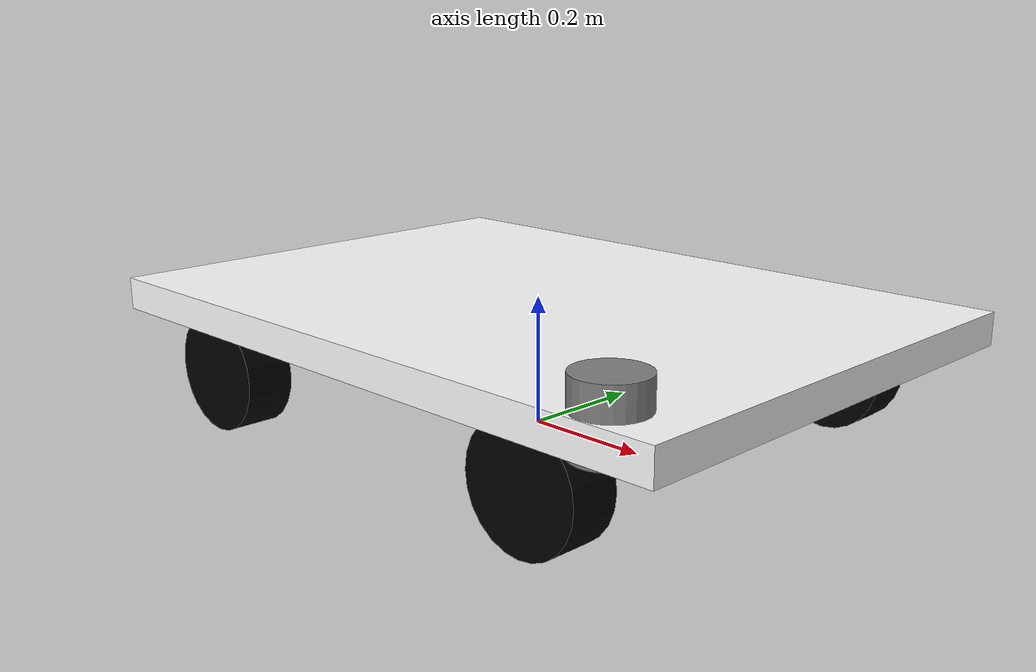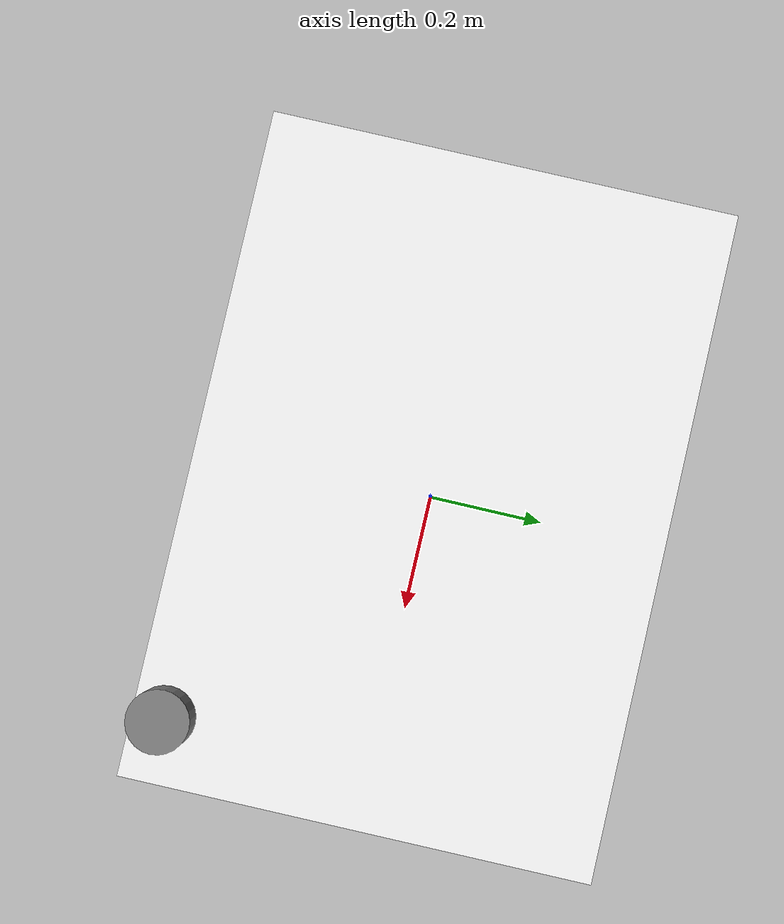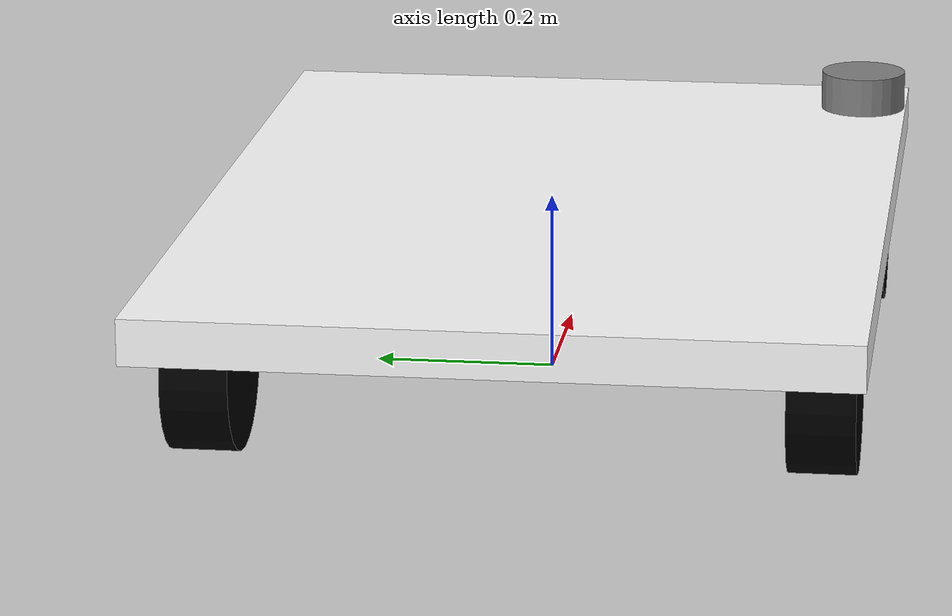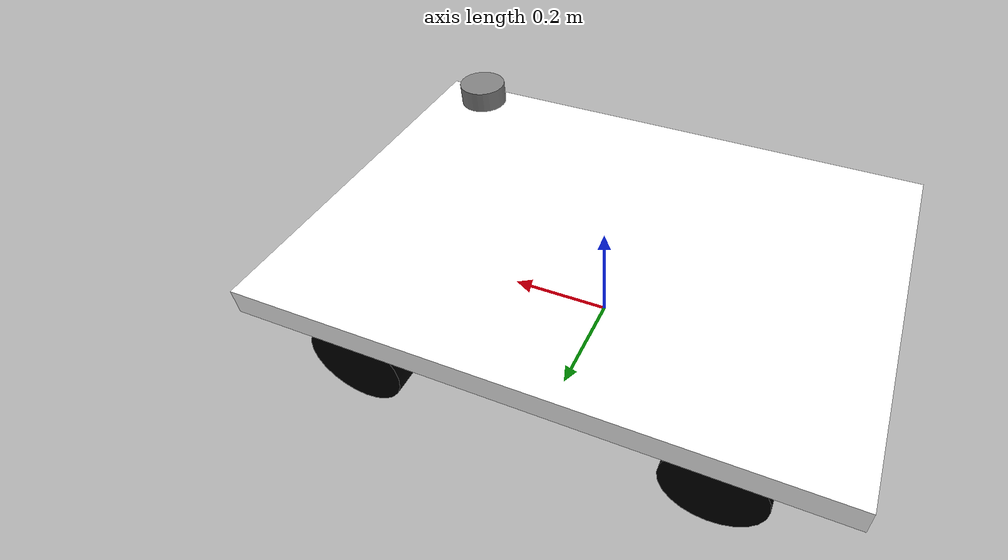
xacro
<?xml version="1.0" ?>
<robot name="robot" xmlns:xacro="http://www.ros.org/wiki/xacro">

    <!-- 參數 -->
    <xacro:property name="wheel_radius" value="0.09"/>
    <xacro:property name="wheel_length" value="0.073"/>

    <xacro:property name="base_size_x" value="1.08"/>
    <xacro:property name="base_size_y" value="0.76"/>
    <xacro:property name="base_height" value="0.05"/>

    <xacro:property name="wheel_offset_x" value="0.325"/>
    <xacro:property name="wheel_offset_y" value="0.3285"/>
    <xacro:property name="wheel_z" value="0.09"/>

    <xacro:property name="Lx" value="0.65"/>
    <xacro:property name="Ly" value="0.661"/>

    <xacro:property name="laser_x" value="0.435"/>
    <xacro:property name="laser_y" value="-0.3285"/>
    <xacro:property name="laser_z" value="0.2"/>

    <!-- TODO: 這是相機還是lidar? -->

    <!-- 機器人底盤 -->
    <link name="base_link">
        <visual>
            <origin xyz="0 0 0.18" rpy="0 0 0" />
            <geometry>
                <box size="${base_size_x} ${base_size_y} ${base_height}"/>
            </geometry>
            <material name="white">
                <color rgba="1 1 1 1"/>
            </material>
        </visual>
    </link>

    <!-- 輪子巨集 -->
    <xacro:macro name="wheel" params="wheel_name x_offset y_offset">
        <joint name="${wheel_name}_joint" type="continuous">
            <origin xyz="${x_offset} ${y_offset} ${wheel_z}" rpy="1.57 0 0"/>
            <parent link="base_link"/>
            <child link="${wheel_name}_link"/>
            <axis xyz="0 1 0"/>
        </joint>

        <transmission name="${wheel_name}_transmission">
            <type>transmission_interface/SimpleTransmission</type>
            <joint name="${wheel_name}_joint">
                <hardwareInterface>hardware_interface/position</hardwareInterface>
                <hardwareInterface>hardware_interface/velocity</hardwareInterface>
                <hardwareInterface>hardware_interface/command</hardwareInterface>
            </joint>
        </transmission>

        <link name="${wheel_name}_link">
            <visual>
                <origin xyz="0 0 0" rpy="0 0 0" />
                <geometry>
                    <cylinder radius="${wheel_radius}" length="${wheel_length}"/>
                </geometry>
                <material name="black">
                    <color rgba="0 0 0 1"/>
                </material>
            </visual>
        </link>
    </xacro:macro>

    <!-- 添加四個輪子 -->
    <xacro:wheel wheel_name="left_wheel" x_offset="-${wheel_offset_x}" y_offset="${wheel_offset_y}"/>
    <xacro:wheel wheel_name="right_wheel" x_offset="-${wheel_offset_x}" y_offset="-${wheel_offset_y}"/>
    <xacro:wheel wheel_name="left_front" x_offset="${wheel_offset_x}" y_offset="${wheel_offset_y}"/>
    <xacro:wheel wheel_name="right_front" x_offset="${wheel_offset_x}" y_offset="-${wheel_offset_y}"/>

    <!-- ros2_control 設定 -->
    <ros2_control name="MotorSet" type="system">
        <hardware>
            <plugin>motor_base::MotorSet</plugin>
        </hardware>

        <parameters>
            <param name="wheel_radius">${wheel_radius}</param>
            <param name="Lx">${Lx}</param>
            <param name="Ly">${Ly}</param>
        </parameters>

        <joint name="left_front_joint">
            <command_interface name="velocity"/>
            <state_interface name="position"/>
            <state_interface name="velocity"/>
        </joint>

        <joint name="right_front_joint">
            <command_interface name="velocity"/>
            <state_interface name="position"/>
            <state_interface name="velocity"/>
        </joint>

        <joint name="left_wheel_joint">
            <command_interface name="velocity"/>
            <state_interface name="position"/>
            <state_interface name="velocity"/>
        </joint>

        <joint name="right_wheel_joint">
            <command_interface name="velocity"/>
            <state_interface name="position"/>
            <state_interface name="velocity"/>
        </joint>
    </ros2_control>

    <!-- 定義 LiDAR（Laser） -->
    <link name="laser">
        <visual>
            <origin xyz="0 0 0" rpy="0 0 0" />
            <geometry>
                <cylinder radius="0.05" length="0.1"/>
            </geometry>
            <material name="gray">
                <color rgba="0.5 0.5 0.5 1"/>
            </material>
        </visual>
    </link>

    <joint name="base_to_laser" type="fixed">
        <parent link="base_link"/>
        <child link="laser"/>
        <origin xyz="${laser_x} ${laser_y} ${laser_z}" rpy="0 0 0"/>
    </joint>

    <!-- 定義相機（Camera Link） -->

</robot>
